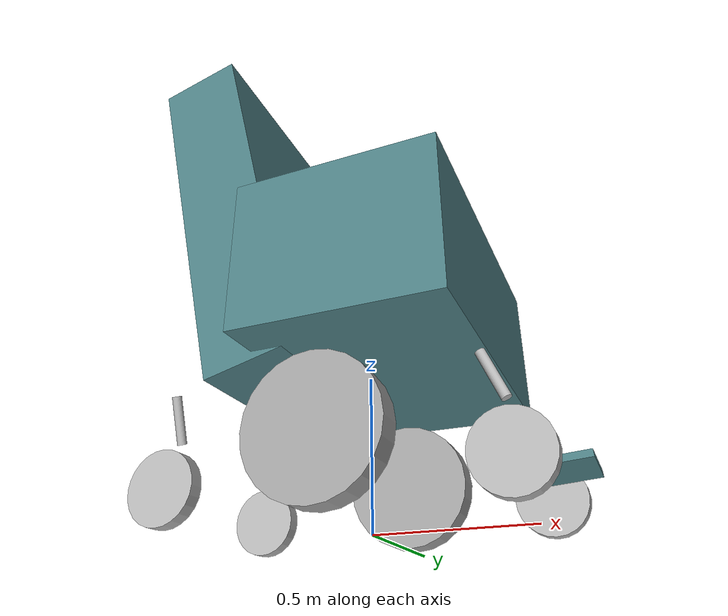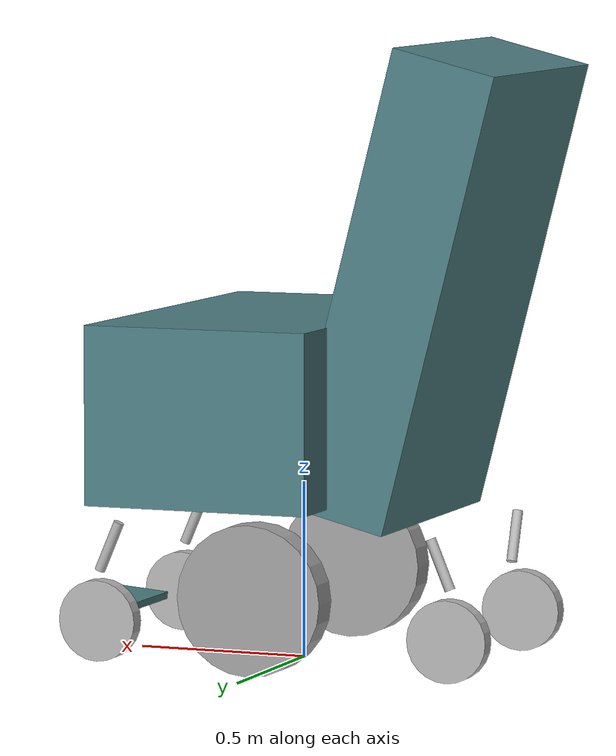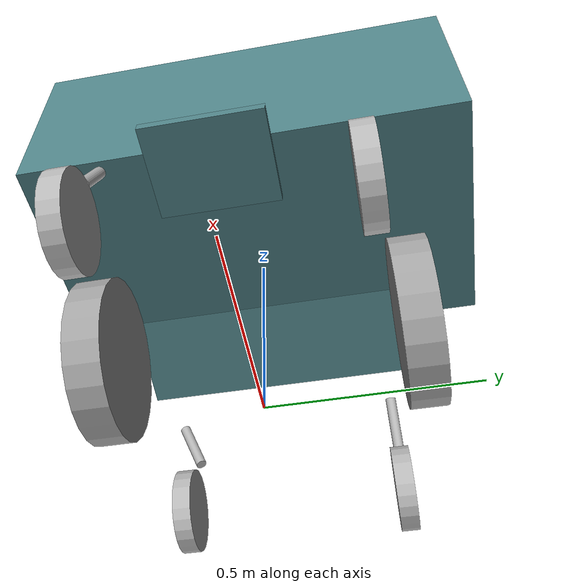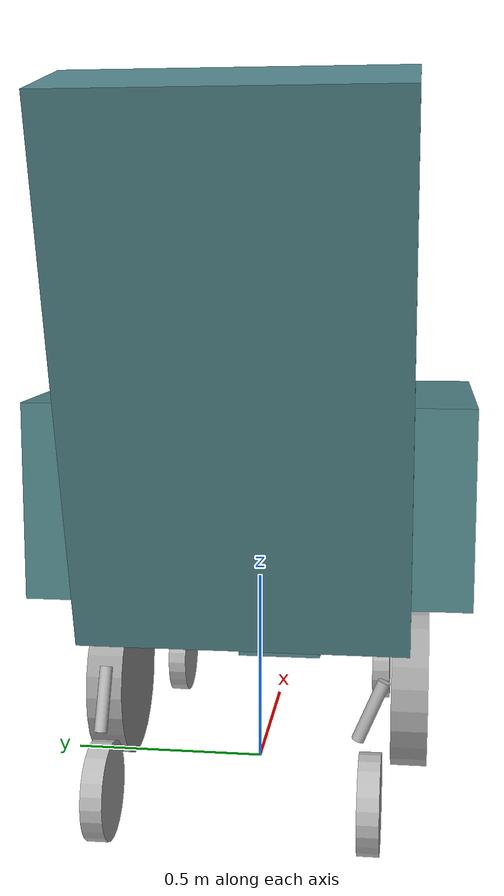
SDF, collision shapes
<?xml version="1.0"?>
<!-- created with Phobos 0.7 -->
<sdf version="1.6">
  <model name="wheelchair_base_model">

    <link name="base_footprint"/>

    <link name="base_link">
      <pose>0 0 0.28 0 0 0</pose>
      <inertial>
        <mass>145</mass>
        <inertia>
          <ixx>3.64053</ixx>
          <ixy>-0.06186</ixy>
          <ixz>-0.00036</ixz>
          <iyy>2.77052</iyy>
          <iyz>0.35856</iyz>
          <izz>0.20333</izz>
        </inertia>
      </inertial>

      <collision name="Wheelchair1">
        <pose>0.575 0.0 -0.14 0.08 0 -1.57</pose>
        <geometry>
          <box>
            <size>0.25 0.2 0.021</size>
          </box>
        </geometry>
      </collision>
      <collision name="Wheelchair2">
        <pose>-0.4 0.0 0.8 0.25 0 -1.57</pose>
        <geometry>
          <box>
            <size>0.8 0.3 1.3</size>
          </box>
        </geometry>
      </collision>
      <collision name="Wheelchair3">
        <pose>0.1 0.01 0.45 0 0 -1.57</pose>
        <geometry>
          <box>
            <size>1.12 0.65 0.5</size>
          </box>
        </geometry>
      </collision>

      <visual name="Wheelchair">
        <geometry>
          <mesh>
            <uri>model://intellwheels_desc/meshes/chair.dae</uri>
            <scale>0.25952 0.24638 0.17893</scale>
          </mesh>
        </geometry>
        <material>
          <ambient>0.24 0.4 0.42 1</ambient>
          <diffuse>0.31 0.51 0.53 1</diffuse>
          <specular>0.2 0.2 0.2 0</specular>
          <emissive>0.1 0 0.1 1</emissive>
        </material>
      </visual>

    </link>

    <joint name="base_joint" type="fixed">
      <parent>base_footprint</parent>
      <child>base_link</child>
      <pose>0 0 0.28 0 0 0</pose>
    </joint>

    <!--    *********************************   SMALL WHEEL 1   ******************************    -->

    <link name="Link_Cylinder1">
      <pose>0.47 0.3 0.28 0 0 -3.10176</pose>
      <inertial>
        <mass>0.5</mass>
        <inertia>
          <ixx>0.001</ixx>
          <ixy>0</ixy>
          <ixz>0</ixz>
          <iyy>0.001</iyy>
          <iyz>0</iyz>
          <izz>0.001</izz>
        </inertia>
      </inertial>

      <collision name="Cylinder1">
        <pose>0.0 0 0.05 -0.4 0.0 -1.57</pose>
        <geometry>
          <cylinder>
            <radius>.015</radius>
            <length>.15</length>
          </cylinder>
        </geometry>
      </collision>

      <visual name="Cylinder1">
        <geometry>
          <mesh>
            <uri>model://intellwheels_desc/meshes/caster_arm.dae</uri>
            <scale>0.00951 0.00951 0.1731</scale>
          </mesh>
        </geometry>
      </visual>
    </link>

    <link name="Link_wheel1">
      <pose>0.50 0.3 0.12 0 0 3.14</pose>

      <inertial>
        <mass>1.0</mass>
        <inertia>
          <ixx>0.001</ixx>
          <ixy>0</ixy>
          <ixz>0</ixz>
          <iyy>0.001</iyy>
          <iyz>0</iyz>
          <izz>0.001</izz>
        </inertia>
      </inertial>

      <collision name="small_wheel_1">
        <pose>0.0 0.0 0.0 0 1.57 -1.57</pose>
          <geometry>
            <cylinder>
              <radius>0.115</radius>
              <length>0.05</length>
            </cylinder>
          </geometry>
          <surface>
          <friction>
            <ode>
              <mu>1</mu>
              <mu2>1</mu2>
            </ode>
          </friction>
        </surface>
      </collision>

      <visual name="wheel1">
      <pose>0.0 0.0 0.0 0 0.0 3.14</pose>
        <geometry>
          <mesh>
            <uri>model://intellwheels_desc/meshes/wheel.dae</uri>
            <scale>0.01306 0.01306 0.01306</scale>
          </mesh>
        </geometry>
      </visual>
    </link>

        <!--    *********************************   SMALL WHEEL 2   ******************************    -->

    <link name="Link_Cylinder2">
      <pose>0.47 -0.313 0.28 0 0 3.18</pose>
      <inertial>
        <mass>0.5</mass>
        <inertia>
          <ixx>0.001</ixx>
          <ixy>0</ixy>
          <ixz>0</ixz>
          <iyy>0.001</iyy>
          <iyz>0</iyz>
          <izz>0.001</izz>
        </inertia>
      </inertial>

      <collision name="Cylinder2">
        <pose>0.0 0 0.05 -0.4 0.0 -1.57</pose>
        <geometry>
          <cylinder>
            <radius>.015</radius>
            <length>.15</length>
          </cylinder>
        </geometry>
      </collision>

      <visual name="Cylinder2">
        <geometry>
          <mesh>
            <uri>model://intellwheels_desc/meshes/caster_arm.dae</uri>
            <scale>0.00951 0.00951 0.1731</scale>
          </mesh>
        </geometry>
      </visual>
    </link>

    <link name="Link_wheel2">
      <pose>0.50 -0.313 0.12 0 0 0.0</pose>

      <inertial>
        <mass>1.0</mass>
        <inertia>
          <ixx>0.001</ixx>
          <ixy>0</ixy>
          <ixz>0</ixz>
          <iyy>0.001</iyy>
          <iyz>0</iyz>
          <izz>0.001</izz>
        </inertia>
      </inertial>

      <collision name="small_wheel_2">
      <pose>0.0 0.0 0.0 0 1.57 -1.57</pose>
        <geometry>
          <cylinder>
            <radius>0.115</radius>
            <length>0.05</length>
          </cylinder>
        </geometry>
        <surface>
          <friction>
            <ode>
              <mu>1</mu>
              <mu2>1</mu2>
            </ode>
          </friction>
        </surface>
      </collision>

      <visual name="wheel2">
        <pose>0.0 0.0 0.0 0 0.0 3.14</pose>
        <geometry>
          <mesh>
            <uri>model://intellwheels_desc/meshes/wheel.dae</uri>
            <scale>0.01306 0.01306 0.01306</scale>
          </mesh>
        </geometry>
      </visual>
    </link>

    <!--    *********************************   SMALL WHEEL 3   ******************************    -->

    <link name="Link_Cylinder3">
      <pose>-0.52 0.3 0.28 0 0 -0.04</pose>
      <inertial>
        <mass>0.5</mass>
        <inertia>
          <ixx>0.001</ixx>
          <ixy>0</ixy>
          <ixz>0</ixz>
          <iyy>0.001</iyy>
          <iyz>0</iyz>
          <izz>0.001</izz>
        </inertia>
      </inertial>

      <collision name="Cylinder3">
        <pose>0.0 0 0.05 -0.4 0.0 -1.57</pose>
        <geometry>
          <cylinder>
            <radius>.015</radius>
            <length>.15</length>
          </cylinder>
        </geometry>
      </collision>

      <visual name="Cylinder3">
        <geometry>
          <mesh>
            <uri>model://intellwheels_desc/meshes/caster_arm.dae</uri>
            <scale>0.00951 0.00951 0.1731</scale>
          </mesh>
        </geometry>
      </visual>
    </link>

    <link name="Link_wheel3">
      <pose>-0.545 0.3 0.12 0 0 3.14</pose>

      <inertial>
        <mass>1.0</mass>
        <inertia>
          <ixx>0.001</ixx>
          <ixy>0</ixy>
          <ixz>0</ixz>
          <iyy>0.001</iyy>
          <iyz>0</iyz>
          <izz>0.001</izz>
        </inertia>
      </inertial>

      <collision name="small_wheel_3">
      <pose>0.0 0.0 0.0 0 1.57 -1.57</pose>
        <geometry>
          <cylinder>
            <radius>0.115</radius>
            <length>0.05</length>
          </cylinder>
        </geometry>
        <surface>
          <friction>
            <ode>
              <mu>1</mu>
              <mu2>1</mu2>
            </ode>
          </friction>
        </surface>
      </collision>

      <visual name="wheel3">
        <pose>0.0 0.0 0.0 0 0.0 3.14</pose>
        <geometry>
          <mesh>
            <uri>model://intellwheels_desc/meshes/wheel.dae</uri>
            <scale>0.01306 0.01306 0.01306</scale>
          </mesh>
        </geometry>
      </visual>
    </link>

<!--    *********************************   SMALL WHEEL 4   ******************************    -->

    <link name="Link_Cylinder4">
      <pose>-0.52 -0.315 0.28 0 0 -1.53</pose>
      <inertial>
        <mass>0.5</mass>
        <inertia>
          <ixx>0.001</ixx>
          <ixy>0</ixy>
          <ixz>0</ixz>
          <iyy>0.001</iyy>
          <iyz>0</iyz>
          <izz>0.001</izz>
        </inertia>
      </inertial>

      <collision name="Cylinder4">
        <pose>0.0 0 0.05 -0.4 0.0 -1.57</pose>
        <geometry>
          <cylinder>
            <radius>.015</radius>
            <length>.15</length>
          </cylinder>
        </geometry>
      </collision>

      <visual name="Cylinder4">
        <geometry>
          <mesh>
            <uri>model://intellwheels_desc/meshes/caster_arm_old.dae</uri>
            <scale>0.00951 0.00951 0.1731</scale>
          </mesh>
        </geometry>
      </visual>
    </link>

    <link name="Link_wheel4">
      <pose>-0.545 -0.315 0.12 0 0 0.0</pose>

      <inertial>
        <mass>1.0</mass>
        <inertia>
          <ixx>0.001</ixx>
          <ixy>0</ixy>
          <ixz>0</ixz>
          <iyy>0.001</iyy>
          <iyz>0</iyz>
          <izz>0.001</izz>
        </inertia>
      </inertial>

      <collision name="small_wheel_4">
      <pose>0.0 0.0 0.0 0 1.57 -1.57</pose>
        <geometry>
          <cylinder>
            <radius>0.115</radius>
            <length>0.05</length>
          </cylinder>
        </geometry>
        <surface>
          <friction>
            <ode>
              <mu>1</mu>
              <mu2>1</mu2>
            </ode>
          </friction>
        </surface>
      </collision>

      <visual name="wheel4">
        <pose>0.0 0.0 0.0 0 0.0 3.14</pose>
        <geometry>
          <mesh>
            <uri>model://intellwheels_desc/meshes/wheel.dae</uri>
            <scale>0.01306 0.01306 0.01306</scale>
          </mesh>
        </geometry>
      </visual>
    </link>

<!--    *********************************   BIG WHEEL 1   ******************************    -->
    <link name="Link_GWheel1">
      <pose>0.0 0.378 0.2166 0 0 0.0</pose>

      <inertial>
        <mass>3.0</mass>
        <inertia>
          <ixx>0.001</ixx>
          <ixy>0</ixy>
          <ixz>0</ixz>
          <iyy>0.001</iyy>
          <iyz>0</iyz>
          <izz>0.001</izz>
        </inertia>
      </inertial>

      <collision name="Cylinder">
        <pose>0.0 0.0 0.0 0.0 1.57 -1.57</pose>
        <geometry>
          <cylinder>
            <radius>0.2116</radius>
            <length>0.092</length>
          </cylinder>
        </geometry>
        <surface>
          <friction>
            <ode>
              <mu>1</mu>
              <mu2>1</mu2>
            </ode>
          </friction>
        </surface>
      </collision>

      <visual name="Gwheel1_wheel">
        <material>
          <ambient>0.64 0.64 0.64 1.0</ambient>
          <diffuse>0.64 0.64 0.64 1.0</diffuse>
          <specular>0.5 0.5 0.5 1.0</specular>
        </material>
        <geometry>
          <mesh>
            <uri>model://intellwheels_desc/meshes/wheel.dae</uri>
            <scale>0.024 0.024 0.024</scale>
          </mesh>
        </geometry>
      </visual>

    </link>

    <!--    *********************************   BIG WHEEL 2   ******************************    -->
    <link name="Link_GWheel2">
      <pose>0 -0.4 0.2166 0 0 3.14</pose>

      <inertial>
        <mass>3.0</mass>
        <inertia>
          <ixx>0.001</ixx>
          <ixy>0</ixy>
          <ixz>0</ixz>
          <iyy>0.001</iyy>
          <iyz>0</iyz>
          <izz>0.001</izz>
        </inertia>
      </inertial>

      <collision name="Cylinder">
        <pose>0.0 0.0 0.0 0.0 1.57 -1.57</pose>
        <geometry>
          <cylinder>
            <radius>0.2116</radius>
            <length>0.092</length>
          </cylinder>
        </geometry>
        <surface>
          <friction>
            <ode>
              <mu>1</mu>
              <mu2>1</mu2>
            </ode>
          </friction>
        </surface>
      </collision>

      <visual name="Gwheel2_wheel">
        <material>
          <ambient>0.64 0.64 0.64 1.0</ambient>
          <diffuse>0.64 0.64 0.64 1.0</diffuse>
          <specular>0.5 0.5 0.5 1.0</specular>
        </material>
        <geometry>
          <mesh>
            <uri>model://intellwheels_desc/meshes/wheel.dae</uri>
            <scale>0.024 0.024 0.024</scale>
          </mesh>
        </geometry>
      </visual>

    </link>

    <!--    *********************************  JOINS SMALL WHEEL 1   ******************************    -->

    <joint name="Link_Cylinder1" type="revolute">
      <parent>base_link</parent>
      <child>Link_Cylinder1</child>
      <pose>0.035 0.0  0.04 0.0 0.0 0.0</pose>
      <axis>
        <xyz>0 0 1.0</xyz>
        <dynamics>
          <damping>0.0</damping>
          <friction>1.0</friction>
        </dynamics>
        <limit>
          <lower></lower>
          <upper></upper>
          <effort>5</effort>
          <velocity>5</velocity>
        </limit>
      </axis>
    </joint>

    <joint name="Link_wheel1" type="revolute">
      <parent>Link_Cylinder1</parent>
      <child>Link_wheel1</child>
      <pose>0.0 0.0 0.0 0.0 0.0 0.0</pose>
      <axis>
        <xyz>0 1 0</xyz>
        <limit>
          <lower></lower>
          <upper></upper>
          <effort>10</effort>
          <velocity>0</velocity>
        </limit>
      </axis>
    </joint>

<!--    *********************************  JOINS SMALL WHEEL 2   ******************************    -->

    <joint name="Link_Cylinder2" type="revolute">
      <parent>base_link</parent>
      <child>Link_Cylinder2</child>
      <pose>0.035 0.0  0.04 0.0 0.0 0.0</pose>
      <axis>
        <xyz>0 0 1.0</xyz>
        <dynamics>
          <damping>0.0</damping>
          <friction>1.0</friction>
        </dynamics>
        <limit>
          <lower></lower>
          <upper></upper>
          <effort>5</effort>
          <velocity>2</velocity>
        </limit>
      </axis>
    </joint>

    <joint name="Link_wheel2" type="revolute">
      <parent>Link_Cylinder2</parent>
      <child>Link_wheel2</child>
      <pose>0.0 0.0 0.0 0.0 0.0 0.0</pose>
      <axis>
        <xyz>0 1 0</xyz>
        <limit>
          <lower></lower>
          <upper></upper>
          <effort>10</effort>
          <velocity>0</velocity>
        </limit>
      </axis>
    </joint>

<!--    *********************************  JOINS SMALL WHEEL 3   ******************************    -->

    <joint name="Link_Cylinder3" type="revolute">
      <parent>base_link</parent>
      <child>Link_Cylinder3</child>
      <pose>0.035 0.0  0.04 0.0 0.0 0.0</pose>
      <axis>
        <xyz>0 0 1.0</xyz>
        <dynamics>
          <damping>0.0</damping>
          <friction>1.0</friction>
        </dynamics>
        <limit>
          <lower></lower>
          <upper></upper>
          <effort>5</effort>
          <velocity>5</velocity>
        </limit>
      </axis>
    </joint>

    <joint name="Link_wheel3" type="revolute">
      <parent>Link_Cylinder3</parent>
      <child>Link_wheel3</child>
      <pose>0.0 0.0 0.0 0.0 0.0 0.0</pose>
      <axis>
        <xyz>0 1 0</xyz>
        <limit>
          <lower></lower>
          <upper></upper>
          <effort>10</effort>
          <velocity>0</velocity>
        </limit>
      </axis>
    </joint>

<!--    *********************************  JOINS SMALL WHEEL 4   ******************************    -->

    <joint name="Link_Cylinder4" type="revolute">
      <parent>base_link</parent>
      <child>Link_Cylinder4</child>
      <pose>0.0 0.035 0.04 0.0 0.0 1.57</pose>
      <axis>
        <xyz>0 0 1.0</xyz>
        <dynamics>
          <damping>0.0</damping>
          <friction>1.0</friction>
        </dynamics>
        <limit>
          <lower></lower>
          <upper></upper>
          <effort>5</effort>
          <velocity>5</velocity>
        </limit>
      </axis>
    </joint>

    <joint name="Link_wheel4" type="revolute">
      <parent>Link_Cylinder4</parent>
      <child>Link_wheel4</child>
      <pose>0.0 0.0 0.0 0.0 0.0 0.0</pose>
      <axis>
        <xyz>0 1 0</xyz>
        <limit>
          <lower></lower>
          <upper></upper>
          <effort>10</effort>
          <velocity>0</velocity>
        </limit>
      </axis>
    </joint>

<!--    *********************************  JOINS BIG WHEEL 1   ******************************    -->

    <joint name="Link_GWheel1" type="revolute">
      <parent>base_link</parent>
      <child>Link_GWheel1</child>
      <pose>0.0 0.0 0.0 0.0 0.0 0.0</pose>
      <axis>
        <xyz>0 1 0</xyz>
        <limit>
          <lower></lower>
          <upper></upper>
          <effort>0</effort>
          <velocity>0</velocity>
        </limit>
      </axis>
    </joint>

<!--    *********************************  JOINS BIG WHEEL 2   ******************************    -->

    <joint name="Link_GWheel2" type="revolute">
      <parent>base_link</parent>
      <child>Link_GWheel2</child>
      <pose>0.0 0.0 0.0 0.0 0.0 3.14</pose>
      <axis>
        <xyz>0 1 0</xyz>
        <limit>
          <lower></lower>
          <upper></upper>
          <effort>0</effort>
          <velocity>0</velocity>
        </limit>
      </axis>
    </joint>

<!--    *********************************  JOINS BIG WHEEL 2   ******************************    -->

 <plugin name='differential_drive_controller' filename='libgazebo_ros_diff_drive.so'>
		<publishWheelTF>false</publishWheelTF>
		<publishWheelJointState>false</publishWheelJointState>
		<alwaysOn>true</alwaysOn>
		<updateRate>30</updateRate>
		<rightJoint>Link_GWheel2</rightJoint>
		<leftJoint>Link_GWheel1</leftJoint>
		<wheelSeparation>0.55</wheelSeparation>
		<wheelDiameter>0.35</wheelDiameter>
		<wheelTorque>200</wheelTorque>
		<commandTopic>cmd_vel</commandTopic>
		<odometryTopic>odom</odometryTopic>
		<odometryFrame>odom</odometryFrame>
		<robotBaseFrame>base_footprint</robotBaseFrame>
		<robotNamespace>/</robotNamespace>
		<legacyMode>false</legacyMode>
  	<rosDebugLevel>na</rosDebugLevel>
		<wheelAcceleration>0</wheelAcceleration>
    <publishTf>true</publishTf>
    <publishOdomTF>true</publishOdomTF>
    <odometrySource>world</odometrySource>
  </plugin>

  </model>

</sdf>
